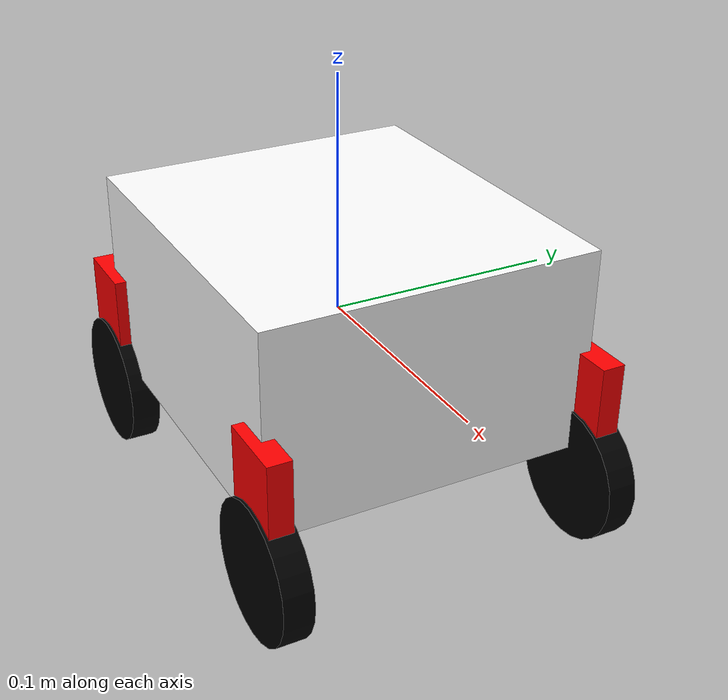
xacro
<?xml version="1.0"?>

<robot xmlns:xacro="http://www.ros.org/wiki/xacro" name="first_marvin">

    <!-- Base link measurements -->
    <xacro:property name="base_x" value="0.1565" />
    <xacro:property name="base_y" value="0.141" />
    <xacro:property name="base_z" value="0.0865" />

    <!-- Leg link measurements -->
    <xacro:property name="leg_x" value="0.03" />
    <xacro:property name="leg_y" value="0.01" />
    <xacro:property name="leg_z" value="0.055" />

    <!-- Wheel measurements -->
    <xacro:property name="wheel_diam" value="0.0575" />
    <xacro:property name="wheel_length" value="0.025" />
    <xacro:property name="pi" value="3.14159265359" />

    <material name="white">
        <color rgba="1 1 1 1"/>
    </material>

    <material name="black">
        <color rgba="0 0 0 1"/>
    </material>

    <material name="red">
        <color rgba="1.0 0.0 0.0 1"/>
    </material>

    <!-- Physics -->
    <xacro:property name="base_effort" value="100"/>
    <xacro:property name="base_velocity" value="0.5"/>

    <!-- inertial macros -->
    <xacro:macro name="default_inertial" params="mass">
        <inertial>
        <mass value="${mass}" />
        <inertia ixx="1.0" ixy="0.0" ixz="0.0" iyy="1.0" iyz="0.0" izz="1.0" />
        </inertial>
    </xacro:macro>

    <!-- Base link -->
    <link name="base_link">
        <xacro:default_inertial mass="10"/>
        <visual>
            <origin xyz="0.0 0.0 0.0"/>
            <geometry>
                <box size="${base_x} ${base_y} ${base_z}"/>
            </geometry>
            <material name="white"/>
        </visual>
        <collision>
            <origin xyz="0.0 0.0 0.0"/>
            <geometry>
                <box size="${base_x} ${base_y} ${base_z}"/>
            </geometry>
        </collision>
    </link>

    <!-- Leg macro -->
    <xacro:macro name="leg" params="prefix suffix reflect_x reflect_y">
        <link name="${prefix}_${suffix}_leg">
            <visual>
                <geometry>
                    <box size="${leg_x} ${leg_y} ${leg_z}"/>
                </geometry>
                <origin xyz="0.0 0.0 -${leg_z / 2}" rpy="0.0 0 0.0"/>
                <material name="red"/>
            </visual>
            <collision>
                <geometry>
                    <box size="${leg_x} ${leg_y} ${leg_z}"/>
                </geometry>
                <origin xyz="0.0 0.0 -${leg_z / 2}" rpy="0.0 0 0.0"/>
            </collision>
            <xacro:default_inertial mass="10"/>
        </link>

        <joint name="base_to_${prefix}_${suffix}_leg" type="revolute">
            <parent link="base_link"/>
            <child link="${prefix}_${suffix}_leg"/>
            <origin xyz="${reflect_x * (base_x/2)} ${reflect_y * (base_y/2)} 0.0"/>
            <axis xyz="0.0 0.0 1"/>
            <limit lower="-${pi/2}" upper="${pi/2}" effort="${base_effort}" velocity="${base_velocity}"/>
        </joint>
        <xacro:wheel prefix="${prefix}" suffix="${suffix}" />
    </xacro:macro>

    <!-- Wheel macro -->
    <xacro:macro name="wheel" params="prefix suffix">
        <link name="${prefix}_${suffix}_wheel">
            <visual>
                <origin rpy="${pi/2} 0.0 0.0"/>
                <geometry>
                    <cylinder radius="${wheel_diam/2}" length="${wheel_length/2}"/>
                </geometry>
                <material name="black"/>
            </visual>
            <collision>
                <origin rpy="${pi/2} 0.0 0.0"/>
                <geometry>
                    <cylinder radius="${wheel_diam/2}" length="${wheel_length/2}"/>
                </geometry>
            </collision>
            <xacro:default_inertial mass="1"/>
        </link>

        <joint name="${prefix}_${suffix}_wheel_joint" type="continuous">
            <parent link="${prefix}_${suffix}_leg"/>
            <child link="${prefix}_${suffix}_wheel"/>
            <origin xyz="0.0 0.0 -${leg_z}"/>
            <axis xyz="0.0 1 0.0"/>
        </joint>

    </xacro:macro>

    <xacro:leg prefix="right" suffix="front" reflect_x="-1" reflect_y="-1"/>
    <xacro:leg prefix="left" suffix="front" reflect_x="1" reflect_y="-1"/>
    <xacro:leg prefix="right" suffix="back" reflect_x="-1" reflect_y="1"/>
    <xacro:leg prefix="left" suffix="back" reflect_x="1" reflect_y="1"/>

</robot>
